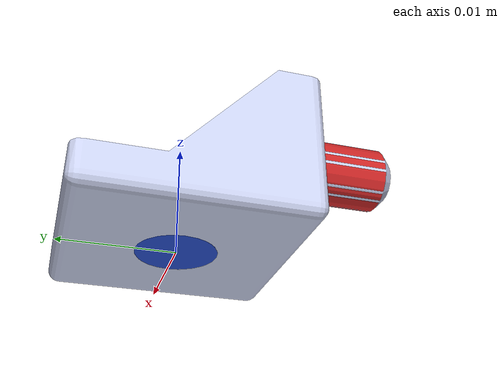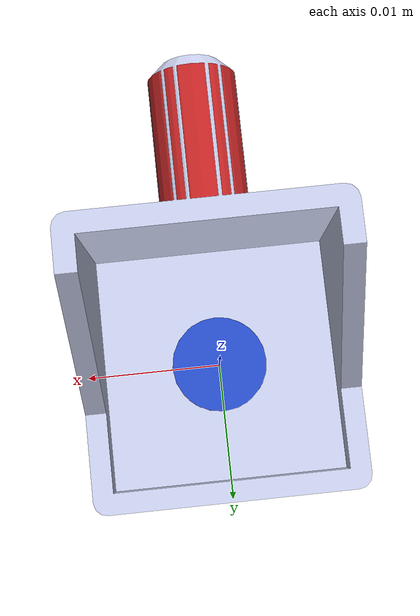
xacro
<?xml version="1.0" encoding="utf-8"?>
<robot name="C122620.SLDPRT" xmlns:xacro="http://www.ros.org/wiki/xacro">

	<link name="C122620.SLDPRT">
		<inertial>
			<origin xyz="9.2811E-19 -0.0050594 0.0049698" rpy="0 0 0"></origin>
			<mass value="0.001497"></mass>
			<inertia ixx="1.1097E-07" ixy="5.1312E-24" ixz="-2.7207E-24" iyy="8.3604E-08" iyz="-3.1662E-08" izz="1.4305E-07"></inertia>
		</inertial>
		<visual>
			<origin xyz="0 0 0" rpy="0 0 0"></origin>
			<geometry>
				<mesh filename="package://object_description/urdfs_from_hj/C122620.SLDPRT/meshes/C122620.SLDPRT.STL"></mesh>
			</geometry>
			<material name="">
				<color rgba="0.79216 0.81961 0.93333 1"></color>
			</material>
		</visual>
		<collision>
			<origin xyz="0 0 0" rpy="0 0 0"></origin>
			<geometry>
				<mesh filename="package://object_description/urdfs_from_hj/C122620.SLDPRT/meshes/C122620.SLDPRT.STL"></mesh>
			</geometry>
		</collision>
	</link>
	<link name="C122620 hole through 1">
		<visual>
			<origin xyz="0 0 0" rpy="0 0 0"></origin>
			<geometry>
				<cylinder length="0.0015" radius="0.0035"></cylinder>
			</geometry>
		</visual>
	</link>
	<link name="C122620 pin insert 1">
		<visual>
			<origin xyz="0 0 0" rpy="0 0 0"></origin>
			<geometry>
				<cylinder length="0.009" radius="0.003"></cylinder>
			</geometry>
		</visual>
	</link>
	<joint name="C122620 hole through 1 joint" type="fixed">
		<origin xyz="0.0 0.0 0.00075" rpy="0.0 3.14159265359 0.0"></origin>
		<parent link="C122620.SLDPRT"></parent>
		<child link="C122620 hole through 1"></child>
	</joint>
	<joint name="C122620 pin insert 1 joint" type="fixed">
		<origin xyz="0.0 -0.0145 0.01" rpy="1.57079632679 0.0 0.0"></origin>
		<parent link="C122620.SLDPRT"></parent>
		<child link="C122620 pin insert 1"></child>
	</joint>
	<gazebo reference="C122620 hole through 1">
		<material>Gazebo/BlueTransparent</material>
	</gazebo>
	<gazebo reference="C122620 pin insert 1">
		<material>Gazebo/RedTransparent</material>
	</gazebo>
</robot>
